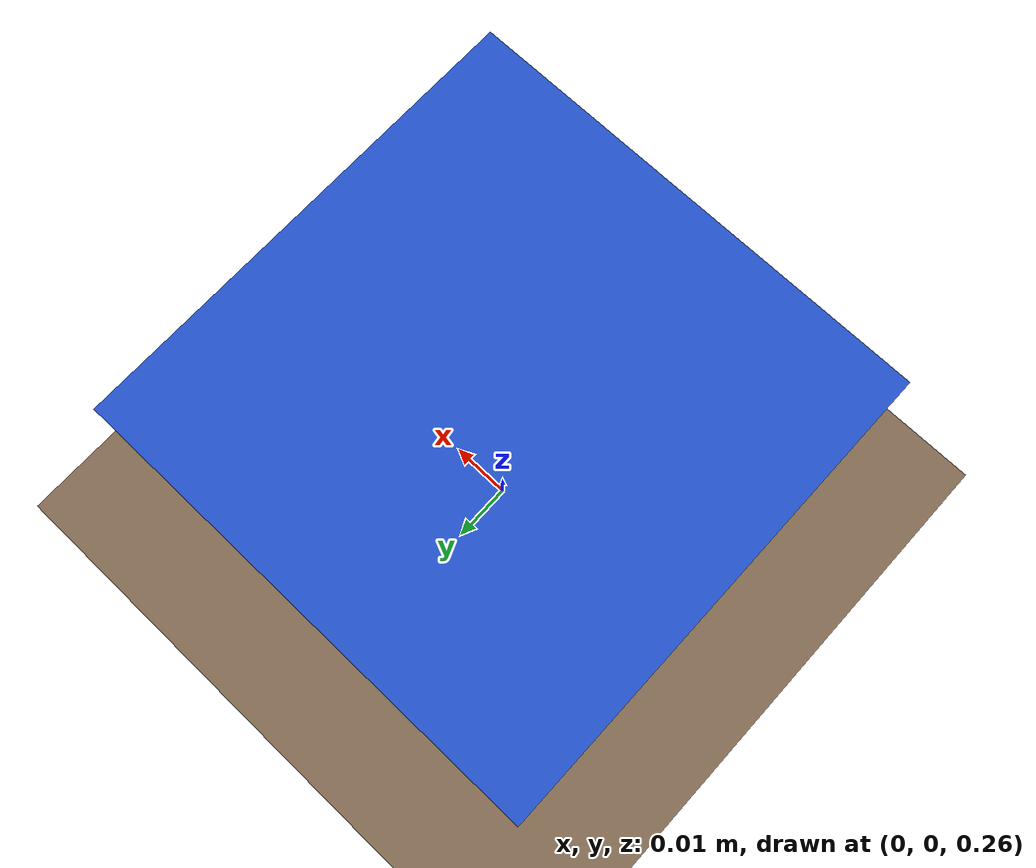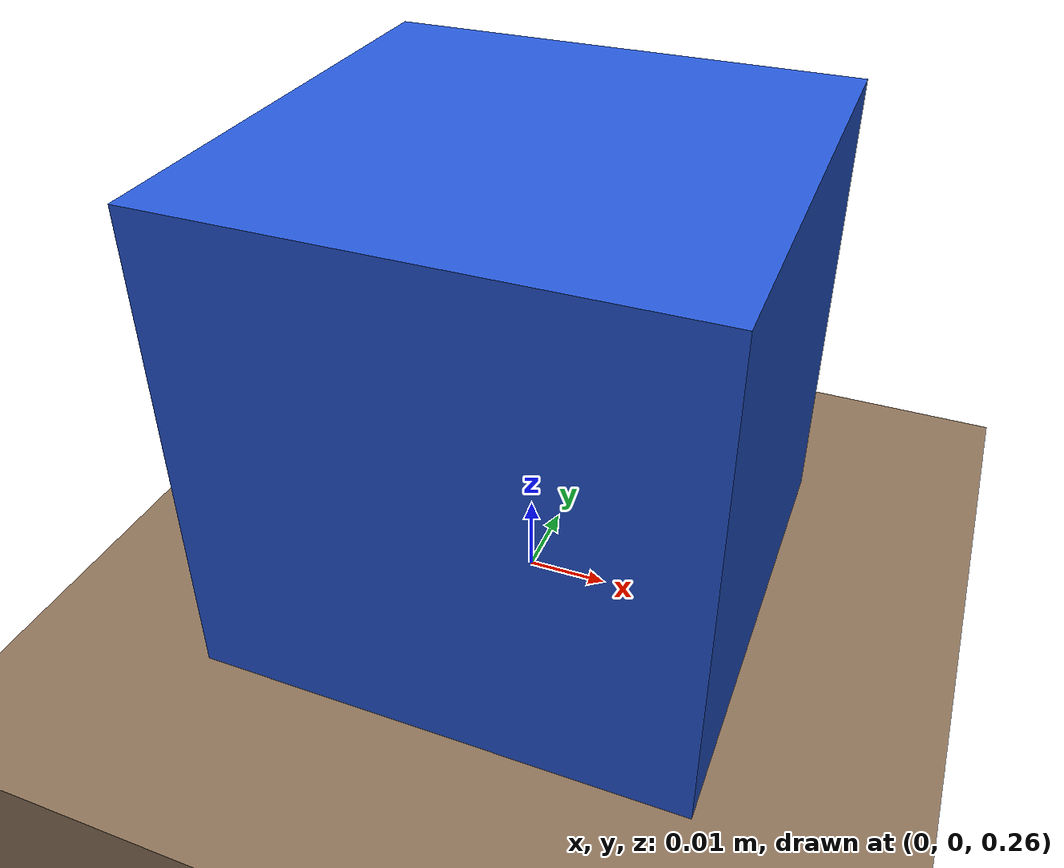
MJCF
<mujoco model="incline">
  <compiler angle="radian" autolimits="true"/>
  <option timestep="0.002" cone="elliptic"/>

  <worldbody>
    <light pos="0 -1 2" dir="0 0.5 -1"/>
    <geom name="floor" type="plane" size="1 1 0.05" rgba=".86 .88 .86 1"/>
    <body name="ramp" mocap="true" pos="0 0 0.25">
      <geom name="ramp" type="box" size="0.4 0.15 0.01" rgba=".55 .45 .35 1" friction="0.4 0.005 0.0001"/>
    </body>
    <body name="block" pos="0 0 0.29">
      <freejoint name="block"/>
      <geom name="block" type="box" size="0.03 0.03 0.03" mass="0.2" rgba=".15 .35 .85 1" friction="0.4 0.005 0.0001"/>
    </body>
  </worldbody>
</mujoco>
